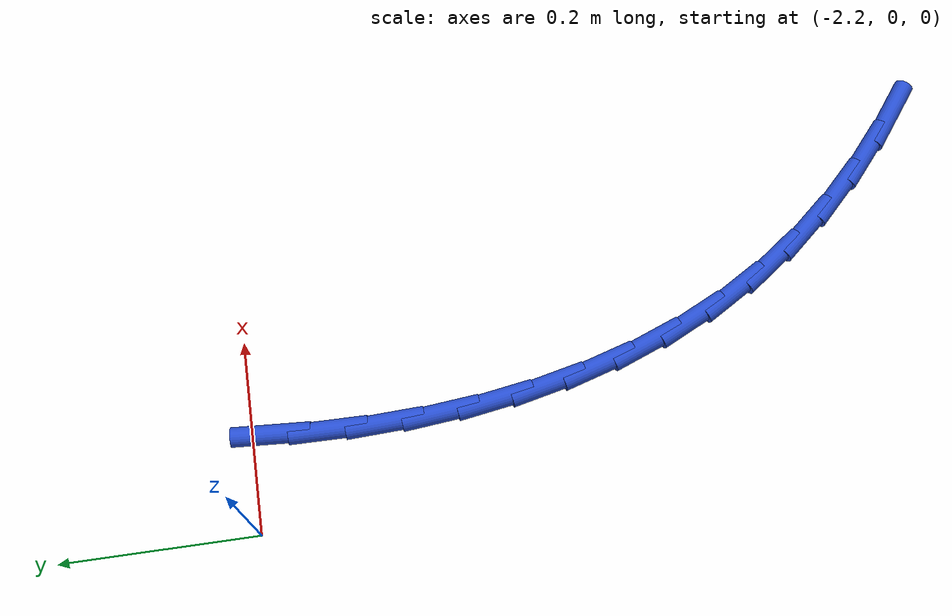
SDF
<sdf version="1.6">
 <world name="default">
  <model name="ground_plane">
   <static>1</static>
   <link name="link">
    <collision name="collision">
     <geometry><plane><normal>0 0 1</normal><size>100 100</size></plane></geometry>
     <surface><friction><ode><mu>100</mu><mu2>50</mu2></ode></friction></surface>
    </collision>
    <visual name="visual">
     <cast_shadows>0</cast_shadows>
     <geometry><plane><normal>0 0 1</normal><size>100 100</size></plane></geometry>
     <material>
      <script><uri>file://media/materials/scripts/gazebo.material</uri><name>Gazebo/WhiteGlow</name></script>
     </material>
    </visual>
   </link>
  </model>
  <model name="line">
   <link name="link_61">
    <pose>-2.1016604383388655 -0.019633304565994242 0.01 0 1.57 1.5089133792316407</pose>
    <collision name="collision">
     <geometry><cylinder><radius>0.01</radius><length>0.08</length></cylinder></geometry>
    </collision>
    <visual name="visual">
     <material>
      <script><name>Gazebo/Blue</name><uri>file://media/materials/scripts/gazebo.material</uri></script>
     </material>
     <geometry><cylinder><radius>0.01</radius><length>0.08</length></cylinder></geometry>
    </visual>
   </link>
   <link name="link_62">
    <pose>-2.105193037409279 -0.07664559463794109 0.01 0 1.57 1.5586541365782458</pose>
    <collision name="collision">
     <geometry><cylinder><radius>0.01</radius><length>0.08</length></cylinder></geometry>
    </collision>
    <visual name="visual">
     <material>
      <script><name>Gazebo/Blue</name><uri>file://media/materials/scripts/gazebo.material</uri></script>
     </material>
     <geometry><cylinder><radius>0.01</radius><length>0.08</length></cylinder></geometry>
    </visual>
   </link>
   <link name="link_63">
    <pose>-2.1058847070217666 -0.13360695072120168 0.01 0 1.57 -1.530208170036187</pose>
    <collision name="collision">
     <geometry><cylinder><radius>0.01</radius><length>0.08</length></cylinder></geometry>
    </collision>
    <visual name="visual">
     <material>
      <script><name>Gazebo/Blue</name><uri>file://media/materials/scripts/gazebo.material</uri></script>
     </material>
     <geometry><cylinder><radius>0.01</radius><length>0.08</length></cylinder></geometry>
    </visual>
   </link>
   <link name="link_64">
    <pose>-2.103585698246897 -0.19021819790537564 0.01 0 1.57 -1.4739018947705682</pose>
    <collision name="collision">
     <geometry><cylinder><radius>0.01</radius><length>0.08</length></cylinder></geometry>
    </collision>
    <visual name="visual">
     <material>
      <script><name>Gazebo/Blue</name><uri>file://media/materials/scripts/gazebo.material</uri></script>
     </material>
     <geometry><cylinder><radius>0.01</radius><length>0.08</length></cylinder></geometry>
    </visual>
   </link>
   <link name="link_65">
    <pose>-2.098146262155238 -0.24618016128006495 0.01 0 1.57 -1.4134271496084432</pose>
    <collision name="collision">
     <geometry><cylinder><radius>0.01</radius><length>0.08</length></cylinder></geometry>
    </collision>
    <visual name="visual">
     <material>
      <script><name>Gazebo/Blue</name><uri>file://media/materials/scripts/gazebo.material</uri></script>
     </material>
     <geometry><cylinder><radius>0.01</radius><length>0.08</length></cylinder></geometry>
    </visual>
   </link>
   <link name="link_66">
    <pose>-2.089416649817356 -0.3011936659348716 0.01 0 1.57 -1.3482038072841782</pose>
    <collision name="collision">
     <geometry><cylinder><radius>0.01</radius><length>0.08</length></cylinder></geometry>
    </collision>
    <visual name="visual">
     <material>
      <script><name>Gazebo/Blue</name><uri>file://media/materials/scripts/gazebo.material</uri></script>
     </material>
     <geometry><cylinder><radius>0.01</radius><length>0.08</length></cylinder></geometry>
    </visual>
   </link>
   <link name="link_67">
    <pose>-2.07724711230382 -0.35495953695939536 0.01 0 1.57 -1.2776977763828166</pose>
    <collision name="collision">
     <geometry><cylinder><radius>0.01</radius><length>0.08</length></cylinder></geometry>
    </collision>
    <visual name="visual">
     <material>
      <script><name>Gazebo/Blue</name><uri>file://media/materials/scripts/gazebo.material</uri></script>
     </material>
     <geometry><cylinder><radius>0.01</radius><length>0.08</length></cylinder></geometry>
    </visual>
   </link>
   <link name="link_68">
    <pose>-2.061487900685198 -0.40717859944323814 0.01 0 1.57 -1.201473403523436</pose>
    <collision name="collision">
     <geometry><cylinder><radius>0.01</radius><length>0.08</length></cylinder></geometry>
    </collision>
    <visual name="visual">
     <material>
      <script><name>Gazebo/Blue</name><uri>file://media/materials/scripts/gazebo.material</uri></script>
     </material>
     <geometry><cylinder><radius>0.01</radius><length>0.08</length></cylinder></geometry>
    </visual>
   </link>
   <link name="link_69">
    <pose>-2.041989266032057 -0.4575516784760012 0.01 0 1.57 -1.119266476019001</pose>
    <collision name="collision">
     <geometry><cylinder><radius>0.01</radius><length>0.08</length></cylinder></geometry>
    </collision>
    <visual name="visual">
     <material>
      <script><name>Gazebo/Blue</name><uri>file://media/materials/scripts/gazebo.material</uri></script>
     </material>
     <geometry><cylinder><radius>0.01</radius><length>0.08</length></cylinder></geometry>
    </visual>
   </link>
   <link name="link_70">
    <pose>-2.018601459414965 -0.5057795991472864 0.01 0 1.57 -1.0311072073391088</pose>
    <collision name="collision">
     <geometry><cylinder><radius>0.01</radius><length>0.08</length></cylinder></geometry>
    </collision>
    <visual name="visual">
     <material>
      <script><name>Gazebo/Blue</name><uri>file://media/materials/scripts/gazebo.material</uri></script>
     </material>
     <geometry><cylinder><radius>0.01</radius><length>0.08</length></cylinder></geometry>
    </visual>
   </link>
   <link name="link_71">
    <pose>-1.9911761269133201 -0.5515642513194634 0.01 0 1.57 -0.941271113482062</pose>
    <collision name="collision">
     <geometry><cylinder><radius>0.01</radius><length>0.08</length></cylinder></geometry>
    </collision>
    <visual name="visual">
     <material>
      <script><name>Gazebo/Blue</name><uri>file://media/materials/scripts/gazebo.material</uri></script>
     </material>
     <geometry><cylinder><radius>0.01</radius><length>0.08</length></cylinder></geometry>
    </visual>
   </link>
   <link name="link_72">
    <pose>-1.959731382549165 -0.5947345853642293 0.01 0 1.57 -0.8579630510765588</pose>
    <collision name="collision">
     <geometry><cylinder><radius>0.01</radius><length>0.08</length></cylinder></geometry>
    </collision>
    <visual name="visual">
     <material>
      <script><name>Gazebo/Blue</name><uri>file://media/materials/scripts/gazebo.material</uri></script>
     </material>
     <geometry><cylinder><radius>0.01</radius><length>0.08</length></cylinder></geometry>
    </visual>
   </link>
   <link name="link_73">
    <pose>-1.9246074011710432 -0.6353653720316567 0.01 0 1.57 -0.7823690442017525</pose>
    <collision name="collision">
     <geometry><cylinder><radius>0.01</radius><length>0.08</length></cylinder></geometry>
    </collision>
    <visual name="visual">
     <material>
      <script><name>Gazebo/Blue</name><uri>file://media/materials/scripts/gazebo.material</uri></script>
     </material>
     <geometry><cylinder><radius>0.01</radius><length>0.08</length></cylinder></geometry>
    </visual>
   </link>
   <link name="link_74">
    <pose>-1.8861811872396756 -0.6735594931255573 0.01 0 1.57 -0.7144002496078748</pose>
    <collision name="collision">
     <geometry><cylinder><radius>0.01</radius><length>0.08</length></cylinder></geometry>
    </collision>
    <visual name="visual">
     <material>
      <script><name>Gazebo/Blue</name><uri>file://media/materials/scripts/gazebo.material</uri></script>
     </material>
     <geometry><cylinder><radius>0.01</radius><length>0.08</length></cylinder></geometry>
    </visual>
   </link>
   <link name="link_75">
    <pose>-1.8448297452157836 -0.7094198304497414 0.01 0 1.57 -0.6536956102916294</pose>
    <collision name="collision">
     <geometry><cylinder><radius>0.01</radius><length>0.08</length></cylinder></geometry>
    </collision>
    <visual name="visual">
     <material>
      <script><name>Gazebo/Blue</name><uri>file://media/materials/scripts/gazebo.material</uri></script>
     </material>
     <geometry><cylinder><radius>0.01</radius><length>0.08</length></cylinder></geometry>
    </visual>
   </link>
  </model>
 </world>
</sdf>
